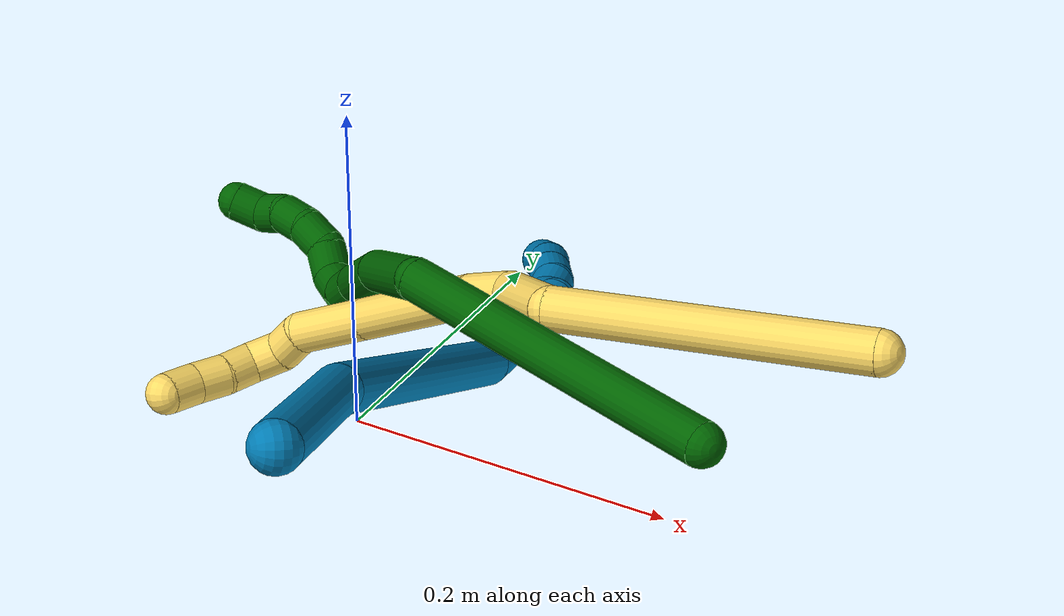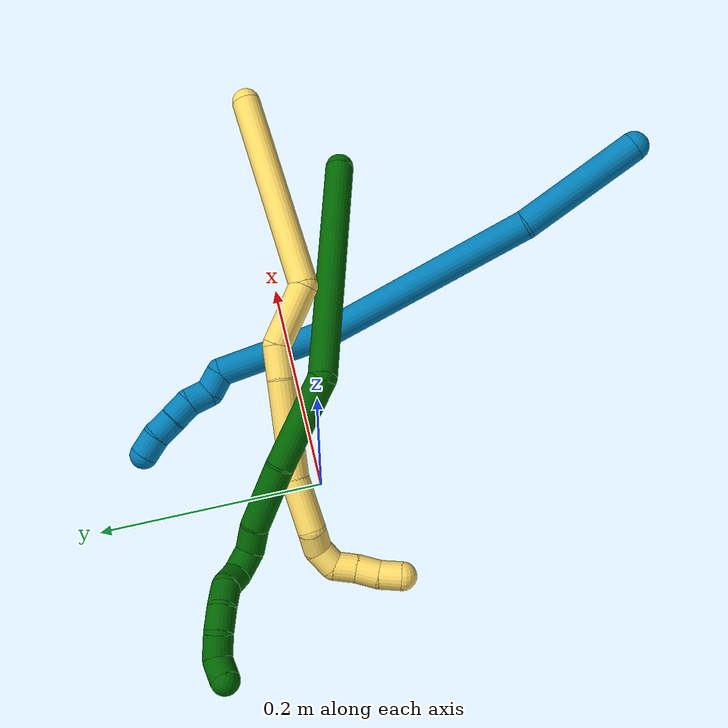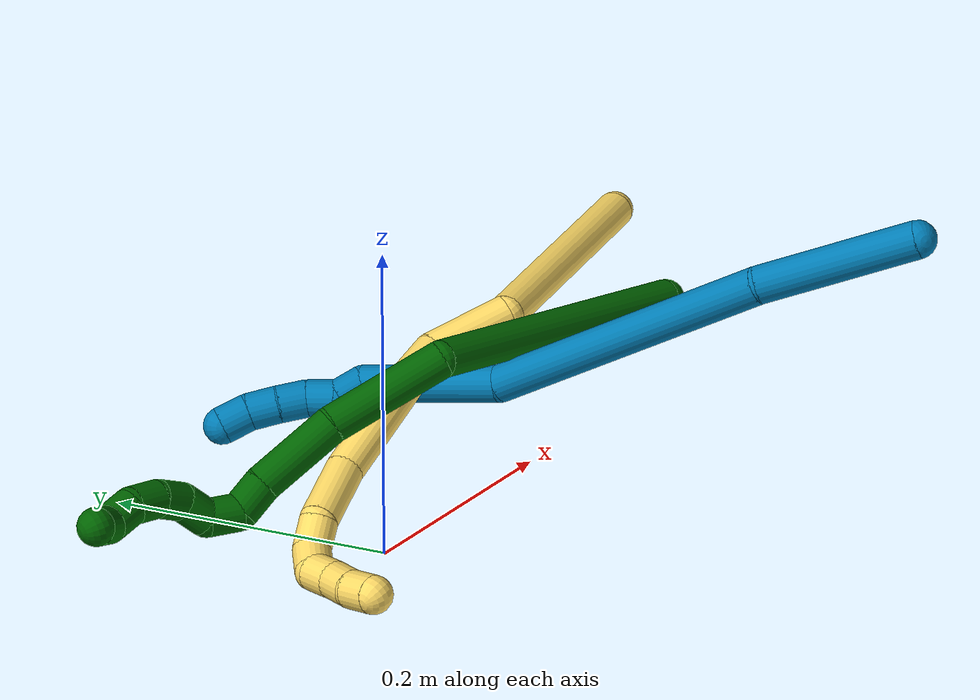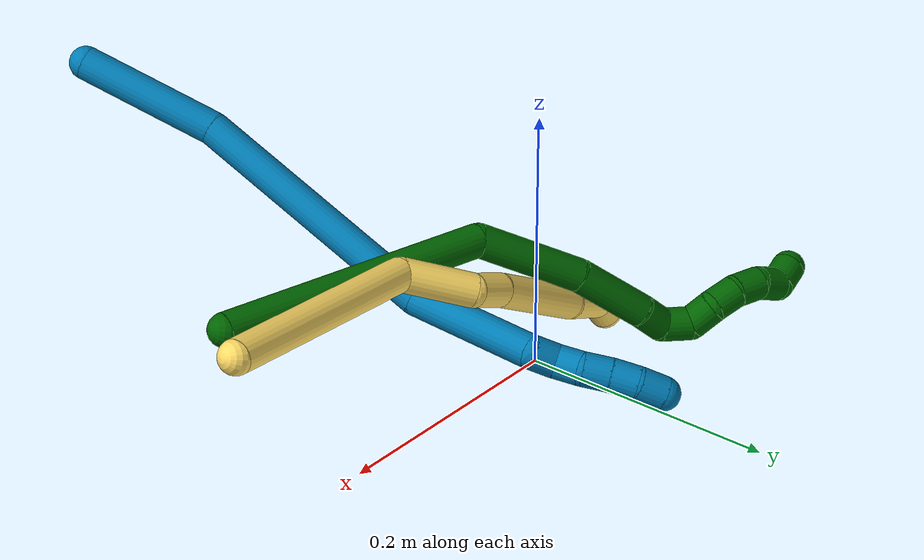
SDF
<sdf version="1.7">
 <world name="default">
  <model name="5">
   <static>0</static>
   <link name="5">
    <collision name="collision-cylinder-e_1_1_4">
     <pose>-0.026023 0.006888 -0.086914 -3.06251 -0.290059 2.61253</pose>
     <geometry><cylinder><radius>0.0125</radius><length>0.181974</length></cylinder></geometry>
     <surface>
      <friction><ode><mu>1.16</mu><mu2>1.16</mu2><slip1>0</slip1><slip2>0</slip2></ode></friction>
      <contact><ode><kp>1e+06</kp><kd>1</kd><max_vel>0</max_vel><min_depth>0.001</min_depth></ode></contact>
     </surface>
    </collision>
    <visual name="visual-cylinder-e_1_1_4">
     <pose>-0.026023 0.006888 -0.086914 -3.06251 -0.290059 2.61253</pose>
     <geometry><cylinder><radius>0.0125</radius><length>0.181974</length></cylinder></geometry>
     <material><ambient>1 0.858824 0.4 1</ambient></material>
    </visual>
    <collision name="collision-cylinder-e_2_4_5">
     <pose>-0.039506 0.016576 -0.198475 -3.02848 0.46808 -2.67526</pose>
     <geometry><cylinder><radius>0.0125</radius><length>0.055591</length></cylinder></geometry>
     <surface>
      <friction><ode><mu>1.16</mu><mu2>1.16</mu2><slip1>0</slip1><slip2>0</slip2></ode></friction>
      <contact><ode><kp>1e+06</kp><kd>1</kd><max_vel>0</max_vel><min_depth>0.001</min_depth></ode></contact>
     </surface>
    </collision>
    <visual name="visual-cylinder-e_2_4_5">
     <pose>-0.039506 0.016576 -0.198475 -3.02848 0.46808 -2.67526</pose>
     <geometry><cylinder><radius>0.0125</radius><length>0.055591</length></cylinder></geometry>
     <material><ambient>1 0.858824 0.4 1</ambient></material>
    </visual>
    <collision name="collision-cylinder-e_3_5_6">
     <pose>-0.027673 0.017953 -0.237587 3.04353 -0.048684 -0.921123</pose>
     <geometry><cylinder><radius>0.0125</radius><length>0.029103</length></cylinder></geometry>
     <surface>
      <friction><ode><mu>1.16</mu><mu2>1.16</mu2><slip1>0</slip1><slip2>0</slip2></ode></friction>
      <contact><ode><kp>1e+06</kp><kd>1</kd><max_vel>0</max_vel><min_depth>0.001</min_depth></ode></contact>
     </surface>
    </collision>
    <visual name="visual-cylinder-e_3_5_6">
     <pose>-0.027673 0.017953 -0.237587 3.04353 -0.048684 -0.921123</pose>
     <geometry><cylinder><radius>0.0125</radius><length>0.029103</length></cylinder></geometry>
     <material><ambient>1 0.858824 0.4 1</ambient></material>
    </visual>
    <collision name="collision-cylinder-e_4_6_7">
     <pose>-0.02821 0.007612 -0.293947 2.93187 0.003991 0.037914</pose>
     <geometry><cylinder><radius>0.0125</radius><length>0.085669</length></cylinder></geometry>
     <surface>
      <friction><ode><mu>1.16</mu><mu2>1.16</mu2><slip1>0</slip1><slip2>0</slip2></ode></friction>
      <contact><ode><kp>1e+06</kp><kd>1</kd><max_vel>0</max_vel><min_depth>0.001</min_depth></ode></contact>
     </surface>
    </collision>
    <visual name="visual-cylinder-e_4_6_7">
     <pose>-0.02821 0.007612 -0.293947 2.93187 0.003991 0.037914</pose>
     <geometry><cylinder><radius>0.0125</radius><length>0.085669</length></cylinder></geometry>
     <material><ambient>1 0.858824 0.4 1</ambient></material>
    </visual>
    <collision name="collision-cylinder-e_5_7_8">
     <pose>-0.032521 -0.006607 -0.358301 2.90977 -0.191824 -1.38111</pose>
     <geometry><cylinder><radius>0.0125</radius><length>0.047014</length></cylinder></geometry>
     <surface>
      <friction><ode><mu>1.16</mu><mu2>1.16</mu2><slip1>0</slip1><slip2>0</slip2></ode></friction>
      <contact><ode><kp>1e+06</kp><kd>1</kd><max_vel>0</max_vel><min_depth>0.001</min_depth></ode></contact>
     </surface>
    </collision>
    <visual name="visual-cylinder-e_5_7_8">
     <pose>-0.032521 -0.006607 -0.358301 2.90977 -0.191824 -1.38111</pose>
     <geometry><cylinder><radius>0.0125</radius><length>0.047014</length></cylinder></geometry>
     <material><ambient>1 0.858824 0.4 1</ambient></material>
    </visual>
    <collision name="collision-cylinder-e_6_8_9">
     <pose>-0.0368 -0.01787 -0.389017 2.51626 0.019905 0.061557</pose>
     <geometry><cylinder><radius>0.0125</radius><length>0.020372</length></cylinder></geometry>
     <surface>
      <friction><ode><mu>1.16</mu><mu2>1.16</mu2><slip1>0</slip1><slip2>0</slip2></ode></friction>
      <contact><ode><kp>1e+06</kp><kd>1</kd><max_vel>0</max_vel><min_depth>0.001</min_depth></ode></contact>
     </surface>
    </collision>
    <visual name="visual-cylinder-e_6_8_9">
     <pose>-0.0368 -0.01787 -0.389017 2.51626 0.019905 0.061557</pose>
     <geometry><cylinder><radius>0.0125</radius><length>0.020372</length></cylinder></geometry>
     <material><ambient>1 0.858824 0.4 1</ambient></material>
    </visual>
    <collision name="collision-cylinder-e_7_9_10">
     <pose>-0.042049 -0.02781 -0.404792 2.65495 -0.569968 -1.73568</pose>
     <geometry><cylinder><radius>0.0125</radius><length>0.020206</length></cylinder></geometry>
     <surface>
      <friction><ode><mu>1.16</mu><mu2>1.16</mu2><slip1>0</slip1><slip2>0</slip2></ode></friction>
      <contact><ode><kp>1e+06</kp><kd>1</kd><max_vel>0</max_vel><min_depth>0.001</min_depth></ode></contact>
     </surface>
    </collision>
    <visual name="visual-cylinder-e_7_9_10">
     <pose>-0.042049 -0.02781 -0.404792 2.65495 -0.569968 -1.73568</pose>
     <geometry><cylinder><radius>0.0125</radius><length>0.020206</length></cylinder></geometry>
     <material><ambient>1 0.858824 0.4 1</ambient></material>
    </visual>
    <collision name="collision-cylinder-e_8_10_11">
     <pose>-0.056751 -0.035185 -0.414016 2.03624 -1.18086 -1.65371</pose>
     <geometry><cylinder><radius>0.0125</radius><length>0.020003</length></cylinder></geometry>
     <surface>
      <friction><ode><mu>1.16</mu><mu2>1.16</mu2><slip1>0</slip1><slip2>0</slip2></ode></friction>
      <contact><ode><kp>1e+06</kp><kd>1</kd><max_vel>0</max_vel><min_depth>0.001</min_depth></ode></contact>
     </surface>
    </collision>
    <visual name="visual-cylinder-e_8_10_11">
     <pose>-0.056751 -0.035185 -0.414016 2.03624 -1.18086 -1.65371</pose>
     <geometry><cylinder><radius>0.0125</radius><length>0.020003</length></cylinder></geometry>
     <material><ambient>1 0.858824 0.4 1</ambient></material>
    </visual>
    <collision name="collision-cylinder-e_9_11_12">
     <pose>-0.07517 -0.041192 -0.418783 2.43543 -1.15741 -2.11442</pose>
     <geometry><cylinder><radius>0.0125</radius><length>0.020023</length></cylinder></geometry>
     <surface>
      <friction><ode><mu>1.16</mu><mu2>1.16</mu2><slip1>0</slip1><slip2>0</slip2></ode></friction>
      <contact><ode><kp>1e+06</kp><kd>1</kd><max_vel>0</max_vel><min_depth>0.001</min_depth></ode></contact>
     </surface>
    </collision>
    <visual name="visual-cylinder-e_9_11_12">
     <pose>-0.07517 -0.041192 -0.418783 2.43543 -1.15741 -2.11442</pose>
     <geometry><cylinder><radius>0.0125</radius><length>0.020023</length></cylinder></geometry>
     <material><ambient>1 0.858824 0.4 1</ambient></material>
    </visual>
    <collision name="collision-cylinder-e_10_12_2">
     <pose>-0.093944 -0.046433 -0.42296 1.97223 -1.28152 -1.68979</pose>
     <geometry><cylinder><radius>0.0125</radius><length>0.020044</length></cylinder></geometry>
     <surface>
      <friction><ode><mu>1.16</mu><mu2>1.16</mu2><slip1>0</slip1><slip2>0</slip2></ode></friction>
      <contact><ode><kp>1e+06</kp><kd>1</kd><max_vel>0</max_vel><min_depth>0.001</min_depth></ode></contact>
     </surface>
    </collision>
    <visual name="visual-cylinder-e_10_12_2">
     <pose>-0.093944 -0.046433 -0.42296 1.97223 -1.28152 -1.68979</pose>
     <geometry><cylinder><radius>0.0125</radius><length>0.020044</length></cylinder></geometry>
     <material><ambient>1 0.858824 0.4 1</ambient></material>
    </visual>
    <collision name="collision-sphere-2">
     <pose>-0.103549 -0.049065 -0.424077 0 -0 0</pose>
     <geometry><sphere><radius>0.0125</radius></sphere></geometry>
     <surface>
      <friction><ode><mu>1.16</mu><mu2>1.16</mu2><slip1>0</slip1><slip2>0</slip2></ode></friction>
      <contact><ode><kp>1e+06</kp><kd>1</kd><max_vel>0</max_vel><min_depth>0.001</min_depth></ode></contact>
     </surface>
    </collision>
    <visual name="visual-sphere-2">
     <pose>-0.103549 -0.049065 -0.424077 0 -0 0</pose>
     <geometry><sphere><radius>0.0125</radius></sphere></geometry>
     <material><ambient>1 0.858824 0.4 1</ambient></material>
    </visual>
    <collision name="collision-sphere-12">
     <pose>-0.084338 -0.043802 -0.421843 0 -0 0</pose>
     <geometry><sphere><radius>0.0125</radius></sphere></geometry>
     <surface>
      <friction><ode><mu>1.16</mu><mu2>1.16</mu2><slip1>0</slip1><slip2>0</slip2></ode></friction>
      <contact><ode><kp>1e+06</kp><kd>1</kd><max_vel>0</max_vel><min_depth>0.001</min_depth></ode></contact>
     </surface>
    </collision>
    <visual name="visual-sphere-12">
     <pose>-0.084338 -0.043802 -0.421843 0 -0 0</pose>
     <geometry><sphere><radius>0.0125</radius></sphere></geometry>
     <material><ambient>1 0.858824 0.4 1</ambient></material>
    </visual>
    <collision name="collision-sphere-11">
     <pose>-0.066001 -0.038582 -0.415723 0 -0 0</pose>
     <geometry><sphere><radius>0.0125</radius></sphere></geometry>
     <surface>
      <friction><ode><mu>1.16</mu><mu2>1.16</mu2><slip1>0</slip1><slip2>0</slip2></ode></friction>
      <contact><ode><kp>1e+06</kp><kd>1</kd><max_vel>0</max_vel><min_depth>0.001</min_depth></ode></contact>
     </surface>
    </collision>
    <visual name="visual-sphere-11">
     <pose>-0.066001 -0.038582 -0.415723 0 -0 0</pose>
     <geometry><sphere><radius>0.0125</radius></sphere></geometry>
     <material><ambient>1 0.858824 0.4 1</ambient></material>
    </visual>
    <collision name="collision-sphere-10">
     <pose>-0.0475 -0.031787 -0.41231 0 -0 0</pose>
     <geometry><sphere><radius>0.0125</radius></sphere></geometry>
     <surface>
      <friction><ode><mu>1.16</mu><mu2>1.16</mu2><slip1>0</slip1><slip2>0</slip2></ode></friction>
      <contact><ode><kp>1e+06</kp><kd>1</kd><max_vel>0</max_vel><min_depth>0.001</min_depth></ode></contact>
     </surface>
    </collision>
    <visual name="visual-sphere-10">
     <pose>-0.0475 -0.031787 -0.41231 0 -0 0</pose>
     <geometry><sphere><radius>0.0125</radius></sphere></geometry>
     <material><ambient>1 0.858824 0.4 1</ambient></material>
    </visual>
    <collision name="collision-sphere-9">
     <pose>-0.036597 -0.023832 -0.397274 0 -0 0</pose>
     <geometry><sphere><radius>0.0125</radius></sphere></geometry>
     <surface>
      <friction><ode><mu>1.16</mu><mu2>1.16</mu2><slip1>0</slip1><slip2>0</slip2></ode></friction>
      <contact><ode><kp>1e+06</kp><kd>1</kd><max_vel>0</max_vel><min_depth>0.001</min_depth></ode></contact>
     </surface>
    </collision>
    <visual name="visual-sphere-9">
     <pose>-0.036597 -0.023832 -0.397274 0 -0 0</pose>
     <geometry><sphere><radius>0.0125</radius></sphere></geometry>
     <material><ambient>1 0.858824 0.4 1</ambient></material>
    </visual>
    <collision name="collision-sphere-4">
     <pose>-0.052046 0.013776 -0.173828 0 -0 0</pose>
     <geometry><sphere><radius>0.0125</radius></sphere></geometry>
     <surface>
      <friction><ode><mu>1.16</mu><mu2>1.16</mu2><slip1>0</slip1><slip2>0</slip2></ode></friction>
      <contact><ode><kp>1e+06</kp><kd>1</kd><max_vel>0</max_vel><min_depth>0.001</min_depth></ode></contact>
     </surface>
    </collision>
    <visual name="visual-sphere-4">
     <pose>-0.052046 0.013776 -0.173828 0 -0 0</pose>
     <geometry><sphere><radius>0.0125</radius></sphere></geometry>
     <material><ambient>1 0.858824 0.4 1</ambient></material>
    </visual>
    <collision name="collision-sphere-1">
     <geometry><sphere><radius>0.0125</radius></sphere></geometry>
     <surface>
      <friction><ode><mu>1.16</mu><mu2>1.16</mu2><slip1>0</slip1><slip2>0</slip2></ode></friction>
      <contact><ode><kp>1e+06</kp><kd>1</kd><max_vel>0</max_vel><min_depth>0.001</min_depth></ode></contact>
     </surface>
    </collision>
    <visual name="visual-sphere-1">
     <geometry><sphere><radius>0.0125</radius></sphere></geometry>
     <material><ambient>1 0.858824 0.4 1</ambient></material>
    </visual>
    <collision name="collision-sphere-8">
     <pose>-0.037003 -0.011909 -0.38076 0 -0 0</pose>
     <geometry><sphere><radius>0.0125</radius></sphere></geometry>
     <surface>
      <friction><ode><mu>1.16</mu><mu2>1.16</mu2><slip1>0</slip1><slip2>0</slip2></ode></friction>
      <contact><ode><kp>1e+06</kp><kd>1</kd><max_vel>0</max_vel><min_depth>0.001</min_depth></ode></contact>
     </surface>
    </collision>
    <visual name="visual-sphere-8">
     <pose>-0.037003 -0.011909 -0.38076 0 -0 0</pose>
     <geometry><sphere><radius>0.0125</radius></sphere></geometry>
     <material><ambient>1 0.858824 0.4 1</ambient></material>
    </visual>
    <collision name="collision-sphere-5">
     <pose>-0.026965 0.019376 -0.223123 0 -0 0</pose>
     <geometry><sphere><radius>0.0125</radius></sphere></geometry>
     <surface>
      <friction><ode><mu>1.16</mu><mu2>1.16</mu2><slip1>0</slip1><slip2>0</slip2></ode></friction>
      <contact><ode><kp>1e+06</kp><kd>1</kd><max_vel>0</max_vel><min_depth>0.001</min_depth></ode></contact>
     </surface>
    </collision>
    <visual name="visual-sphere-5">
     <pose>-0.026965 0.019376 -0.223123 0 -0 0</pose>
     <geometry><sphere><radius>0.0125</radius></sphere></geometry>
     <material><ambient>1 0.858824 0.4 1</ambient></material>
    </visual>
    <collision name="collision-sphere-6">
     <pose>-0.028381 0.01653 -0.252052 0 -0 0</pose>
     <geometry><sphere><radius>0.0125</radius></sphere></geometry>
     <surface>
      <friction><ode><mu>1.16</mu><mu2>1.16</mu2><slip1>0</slip1><slip2>0</slip2></ode></friction>
      <contact><ode><kp>1e+06</kp><kd>1</kd><max_vel>0</max_vel><min_depth>0.001</min_depth></ode></contact>
     </surface>
    </collision>
    <visual name="visual-sphere-6">
     <pose>-0.028381 0.01653 -0.252052 0 -0 0</pose>
     <geometry><sphere><radius>0.0125</radius></sphere></geometry>
     <material><ambient>1 0.858824 0.4 1</ambient></material>
    </visual>
    <collision name="collision-sphere-7">
     <pose>-0.028039 -0.001305 -0.335843 0 -0 0</pose>
     <geometry><sphere><radius>0.0125</radius></sphere></geometry>
     <surface>
      <friction><ode><mu>1.16</mu><mu2>1.16</mu2><slip1>0</slip1><slip2>0</slip2></ode></friction>
      <contact><ode><kp>1e+06</kp><kd>1</kd><max_vel>0</max_vel><min_depth>0.001</min_depth></ode></contact>
     </surface>
    </collision>
    <visual name="visual-sphere-7">
     <pose>-0.028039 -0.001305 -0.335843 0 -0 0</pose>
     <geometry><sphere><radius>0.0125</radius></sphere></geometry>
     <material><ambient>1 0.858824 0.4 1</ambient></material>
    </visual>
    <inertial>
     <pose>-0.035611 -0.000693 -0.234081 0 -0 0</pose>
     <mass>0.5</mass>
     <inertia>
      <ixx>-0.000155</ixx>
      <ixy>0</ixy>
      <ixz>0</ixz>
      <iyy>0.000627</iyy>
      <iyz>0</iyz>
      <izz>8.9e-05</izz>
     </inertia>
    </inertial>
   </link>
   <pose>0.315366 -0.003879 0.146084 1.24429 0.377422 1.27833</pose>
  </model>
  <model name="6">
   <static>0</static>
   <link name="6">
    <collision name="collision-cylinder-e_1_1_4">
     <pose>-0.021596 0.025626 -0.099275 -2.88898 -0.207593 1.37406</pose>
     <geometry><cylinder><radius>0.0125</radius><length>0.209558</length></cylinder></geometry>
     <surface>
      <friction><ode><mu>1.16</mu><mu2>1.16</mu2><slip1>0</slip1><slip2>0</slip2></ode></friction>
      <contact><ode><kp>1e+06</kp><kd>1</kd><max_vel>0</max_vel><min_depth>0.001</min_depth></ode></contact>
     </surface>
    </collision>
    <visual name="visual-cylinder-e_1_1_4">
     <pose>-0.021596 0.025626 -0.099275 -2.88898 -0.207593 1.37406</pose>
     <geometry><cylinder><radius>0.0125</radius><length>0.209558</length></cylinder></geometry>
     <material><ambient>0 0.392157 0.003922 1</ambient></material>
    </visual>
    <collision name="collision-cylinder-e_2_4_5">
     <pose>-0.035823 0.041123 -0.237878 2.88951 0.179486 1.23503</pose>
     <geometry><cylinder><radius>0.0125</radius><length>0.082547</length></cylinder></geometry>
     <surface>
      <friction><ode><mu>1.16</mu><mu2>1.16</mu2><slip1>0</slip1><slip2>0</slip2></ode></friction>
      <contact><ode><kp>1e+06</kp><kd>1</kd><max_vel>0</max_vel><min_depth>0.001</min_depth></ode></contact>
     </surface>
    </collision>
    <visual name="visual-cylinder-e_2_4_5">
     <pose>-0.035823 0.041123 -0.237878 2.88951 0.179486 1.23503</pose>
     <geometry><cylinder><radius>0.0125</radius><length>0.082547</length></cylinder></geometry>
     <material><ambient>0 0.392157 0.003922 1</ambient></material>
    </visual>
    <collision name="collision-cylinder-e_3_5_6">
     <pose>-0.024387 0.018856 -0.303339 2.70681 0.140225 0.615664</pose>
     <geometry><cylinder><radius>0.0125</radius><length>0.058203</length></cylinder></geometry>
     <surface>
      <friction><ode><mu>1.16</mu><mu2>1.16</mu2><slip1>0</slip1><slip2>0</slip2></ode></friction>
      <contact><ode><kp>1e+06</kp><kd>1</kd><max_vel>0</max_vel><min_depth>0.001</min_depth></ode></contact>
     </surface>
    </collision>
    <visual name="visual-cylinder-e_3_5_6">
     <pose>-0.024387 0.018856 -0.303339 2.70681 0.140225 0.615664</pose>
     <geometry><cylinder><radius>0.0125</radius><length>0.058203</length></cylinder></geometry>
     <material><ambient>0 0.392157 0.003922 1</ambient></material>
    </visual>
    <collision name="collision-cylinder-e_4_6_7">
     <pose>-0.020765 0.00095 -0.339543 2.62133 -0.038393 -0.144014</pose>
     <geometry><cylinder><radius>0.0125</radius><length>0.023226</length></cylinder></geometry>
     <surface>
      <friction><ode><mu>1.16</mu><mu2>1.16</mu2><slip1>0</slip1><slip2>0</slip2></ode></friction>
      <contact><ode><kp>1e+06</kp><kd>1</kd><max_vel>0</max_vel><min_depth>0.001</min_depth></ode></contact>
     </surface>
    </collision>
    <visual name="visual-cylinder-e_4_6_7">
     <pose>-0.020765 0.00095 -0.339543 2.62133 -0.038393 -0.144014</pose>
     <geometry><cylinder><radius>0.0125</radius><length>0.023226</length></cylinder></geometry>
     <material><ambient>0 0.392157 0.003922 1</ambient></material>
    </visual>
    <collision name="collision-cylinder-e_5_7_8">
     <pose>-0.019047 -0.003203 -0.360509 -2.99442 0.193999 -1.84491</pose>
     <geometry><cylinder><radius>0.0125</radius><length>0.022454</length></cylinder></geometry>
     <surface>
      <friction><ode><mu>1.16</mu><mu2>1.16</mu2><slip1>0</slip1><slip2>0</slip2></ode></friction>
      <contact><ode><kp>1e+06</kp><kd>1</kd><max_vel>0</max_vel><min_depth>0.001</min_depth></ode></contact>
     </surface>
    </collision>
    <visual name="visual-cylinder-e_5_7_8">
     <pose>-0.019047 -0.003203 -0.360509 -2.99442 0.193999 -1.84491</pose>
     <geometry><cylinder><radius>0.0125</radius><length>0.022454</length></cylinder></geometry>
     <material><ambient>0 0.392157 0.003922 1</ambient></material>
    </visual>
    <collision name="collision-cylinder-e_6_8_9">
     <pose>-0.014681 0.006368 -0.377685 -2.23896 0.213933 -0.436038</pose>
     <geometry><cylinder><radius>0.0125</radius><length>0.020743</length></cylinder></geometry>
     <surface>
      <friction><ode><mu>1.16</mu><mu2>1.16</mu2><slip1>0</slip1><slip2>0</slip2></ode></friction>
      <contact><ode><kp>1e+06</kp><kd>1</kd><max_vel>0</max_vel><min_depth>0.001</min_depth></ode></contact>
     </surface>
    </collision>
    <visual name="visual-cylinder-e_6_8_9">
     <pose>-0.014681 0.006368 -0.377685 -2.23896 0.213933 -0.436038</pose>
     <geometry><cylinder><radius>0.0125</radius><length>0.020743</length></cylinder></geometry>
     <material><ambient>0 0.392157 0.003922 1</ambient></material>
    </visual>
    <collision name="collision-cylinder-e_7_9_10">
     <pose>-0.013936 0.019713 -0.392677 -2.58759 -0.141283 0.487848</pose>
     <geometry><cylinder><radius>0.0125</radius><length>0.020696</length></cylinder></geometry>
     <surface>
      <friction><ode><mu>1.16</mu><mu2>1.16</mu2><slip1>0</slip1><slip2>0</slip2></ode></friction>
      <contact><ode><kp>1e+06</kp><kd>1</kd><max_vel>0</max_vel><min_depth>0.001</min_depth></ode></contact>
     </surface>
    </collision>
    <visual name="visual-cylinder-e_7_9_10">
     <pose>-0.013936 0.019713 -0.392677 -2.58759 -0.141283 0.487848</pose>
     <geometry><cylinder><radius>0.0125</radius><length>0.020696</length></cylinder></geometry>
     <material><ambient>0 0.392157 0.003922 1</ambient></material>
    </visual>
    <collision name="collision-cylinder-e_8_10_11">
     <pose>-0.017378 0.027707 -0.411684 -2.89381 -0.18476 1.27924</pose>
     <geometry><cylinder><radius>0.0125</radius><length>0.021605</length></cylinder></geometry>
     <surface>
      <friction><ode><mu>1.16</mu><mu2>1.16</mu2><slip1>0</slip1><slip2>0</slip2></ode></friction>
      <contact><ode><kp>1e+06</kp><kd>1</kd><max_vel>0</max_vel><min_depth>0.001</min_depth></ode></contact>
     </surface>
    </collision>
    <visual name="visual-cylinder-e_8_10_11">
     <pose>-0.017378 0.027707 -0.411684 -2.89381 -0.18476 1.27924</pose>
     <geometry><cylinder><radius>0.0125</radius><length>0.021605</length></cylinder></geometry>
     <material><ambient>0 0.392157 0.003922 1</ambient></material>
    </visual>
    <collision name="collision-cylinder-e_9_11_12">
     <pose>-0.021826 0.028861 -0.432002 2.99788 -0.238632 -2.06015</pose>
     <geometry><cylinder><radius>0.0125</radius><length>0.020848</length></cylinder></geometry>
     <surface>
      <friction><ode><mu>1.16</mu><mu2>1.16</mu2><slip1>0</slip1><slip2>0</slip2></ode></friction>
      <contact><ode><kp>1e+06</kp><kd>1</kd><max_vel>0</max_vel><min_depth>0.001</min_depth></ode></contact>
     </surface>
    </collision>
    <visual name="visual-cylinder-e_9_11_12">
     <pose>-0.021826 0.028861 -0.432002 2.99788 -0.238632 -2.06015</pose>
     <geometry><cylinder><radius>0.0125</radius><length>0.020848</length></cylinder></geometry>
     <material><ambient>0 0.392157 0.003922 1</ambient></material>
    </visual>
    <collision name="collision-cylinder-e_10_12_2">
     <pose>-0.030155 0.031852 -0.448889 -2.56722 -0.62237 1.65595</pose>
     <geometry><cylinder><radius>0.0125</radius><length>0.020121</length></cylinder></geometry>
     <surface>
      <friction><ode><mu>1.16</mu><mu2>1.16</mu2><slip1>0</slip1><slip2>0</slip2></ode></friction>
      <contact><ode><kp>1e+06</kp><kd>1</kd><max_vel>0</max_vel><min_depth>0.001</min_depth></ode></contact>
     </surface>
    </collision>
    <visual name="visual-cylinder-e_10_12_2">
     <pose>-0.030155 0.031852 -0.448889 -2.56722 -0.62237 1.65595</pose>
     <geometry><cylinder><radius>0.0125</radius><length>0.020121</length></cylinder></geometry>
     <material><ambient>0 0.392157 0.003922 1</ambient></material>
    </visual>
    <collision name="collision-sphere-2">
     <pose>-0.03602 0.036293 -0.455751 0 -0 0</pose>
     <geometry><sphere><radius>0.0125</radius></sphere></geometry>
     <surface>
      <friction><ode><mu>1.16</mu><mu2>1.16</mu2><slip1>0</slip1><slip2>0</slip2></ode></friction>
      <contact><ode><kp>1e+06</kp><kd>1</kd><max_vel>0</max_vel><min_depth>0.001</min_depth></ode></contact>
     </surface>
    </collision>
    <visual name="visual-sphere-2">
     <pose>-0.03602 0.036293 -0.455751 0 -0 0</pose>
     <geometry><sphere><radius>0.0125</radius></sphere></geometry>
     <material><ambient>0 0.392157 0.003922 1</ambient></material>
    </visual>
    <collision name="collision-sphere-12">
     <pose>-0.02429 0.027411 -0.442026 0 -0 0</pose>
     <geometry><sphere><radius>0.0125</radius></sphere></geometry>
     <surface>
      <friction><ode><mu>1.16</mu><mu2>1.16</mu2><slip1>0</slip1><slip2>0</slip2></ode></friction>
      <contact><ode><kp>1e+06</kp><kd>1</kd><max_vel>0</max_vel><min_depth>0.001</min_depth></ode></contact>
     </surface>
    </collision>
    <visual name="visual-sphere-12">
     <pose>-0.02429 0.027411 -0.442026 0 -0 0</pose>
     <geometry><sphere><radius>0.0125</radius></sphere></geometry>
     <material><ambient>0 0.392157 0.003922 1</ambient></material>
    </visual>
    <collision name="collision-sphere-11">
     <pose>-0.019362 0.030312 -0.421978 0 -0 0</pose>
     <geometry><sphere><radius>0.0125</radius></sphere></geometry>
     <surface>
      <friction><ode><mu>1.16</mu><mu2>1.16</mu2><slip1>0</slip1><slip2>0</slip2></ode></friction>
      <contact><ode><kp>1e+06</kp><kd>1</kd><max_vel>0</max_vel><min_depth>0.001</min_depth></ode></contact>
     </surface>
    </collision>
    <visual name="visual-sphere-11">
     <pose>-0.019362 0.030312 -0.421978 0 -0 0</pose>
     <geometry><sphere><radius>0.0125</radius></sphere></geometry>
     <material><ambient>0 0.392157 0.003922 1</ambient></material>
    </visual>
    <collision name="collision-sphere-10">
     <pose>-0.015393 0.025103 -0.401389 0 -0 0</pose>
     <geometry><sphere><radius>0.0125</radius></sphere></geometry>
     <surface>
      <friction><ode><mu>1.16</mu><mu2>1.16</mu2><slip1>0</slip1><slip2>0</slip2></ode></friction>
      <contact><ode><kp>1e+06</kp><kd>1</kd><max_vel>0</max_vel><min_depth>0.001</min_depth></ode></contact>
     </surface>
    </collision>
    <visual name="visual-sphere-10">
     <pose>-0.015393 0.025103 -0.401389 0 -0 0</pose>
     <geometry><sphere><radius>0.0125</radius></sphere></geometry>
     <material><ambient>0 0.392157 0.003922 1</ambient></material>
    </visual>
    <collision name="collision-sphere-9">
     <pose>-0.012479 0.014323 -0.383964 0 -0 0</pose>
     <geometry><sphere><radius>0.0125</radius></sphere></geometry>
     <surface>
      <friction><ode><mu>1.16</mu><mu2>1.16</mu2><slip1>0</slip1><slip2>0</slip2></ode></friction>
      <contact><ode><kp>1e+06</kp><kd>1</kd><max_vel>0</max_vel><min_depth>0.001</min_depth></ode></contact>
     </surface>
    </collision>
    <visual name="visual-sphere-9">
     <pose>-0.012479 0.014323 -0.383964 0 -0 0</pose>
     <geometry><sphere><radius>0.0125</radius></sphere></geometry>
     <material><ambient>0 0.392157 0.003922 1</ambient></material>
    </visual>
    <collision name="collision-sphere-4">
     <pose>-0.043191 0.051252 -0.198551 0 -0 0</pose>
     <geometry><sphere><radius>0.0125</radius></sphere></geometry>
     <surface>
      <friction><ode><mu>1.16</mu><mu2>1.16</mu2><slip1>0</slip1><slip2>0</slip2></ode></friction>
      <contact><ode><kp>1e+06</kp><kd>1</kd><max_vel>0</max_vel><min_depth>0.001</min_depth></ode></contact>
     </surface>
    </collision>
    <visual name="visual-sphere-4">
     <pose>-0.043191 0.051252 -0.198551 0 -0 0</pose>
     <geometry><sphere><radius>0.0125</radius></sphere></geometry>
     <material><ambient>0 0.392157 0.003922 1</ambient></material>
    </visual>
    <collision name="collision-sphere-1">
     <geometry><sphere><radius>0.0125</radius></sphere></geometry>
     <surface>
      <friction><ode><mu>1.16</mu><mu2>1.16</mu2><slip1>0</slip1><slip2>0</slip2></ode></friction>
      <contact><ode><kp>1e+06</kp><kd>1</kd><max_vel>0</max_vel><min_depth>0.001</min_depth></ode></contact>
     </surface>
    </collision>
    <visual name="visual-sphere-1">
     <geometry><sphere><radius>0.0125</radius></sphere></geometry>
     <material><ambient>0 0.392157 0.003922 1</ambient></material>
    </visual>
    <collision name="collision-sphere-8">
     <pose>-0.016883 -0.001588 -0.371406 0 -0 0</pose>
     <geometry><sphere><radius>0.0125</radius></sphere></geometry>
     <surface>
      <friction><ode><mu>1.16</mu><mu2>1.16</mu2><slip1>0</slip1><slip2>0</slip2></ode></friction>
      <contact><ode><kp>1e+06</kp><kd>1</kd><max_vel>0</max_vel><min_depth>0.001</min_depth></ode></contact>
     </surface>
    </collision>
    <visual name="visual-sphere-8">
     <pose>-0.016883 -0.001588 -0.371406 0 -0 0</pose>
     <geometry><sphere><radius>0.0125</radius></sphere></geometry>
     <material><ambient>0 0.392157 0.003922 1</ambient></material>
    </visual>
    <collision name="collision-sphere-5">
     <pose>-0.028455 0.030994 -0.277205 0 -0 0</pose>
     <geometry><sphere><radius>0.0125</radius></sphere></geometry>
     <surface>
      <friction><ode><mu>1.16</mu><mu2>1.16</mu2><slip1>0</slip1><slip2>0</slip2></ode></friction>
      <contact><ode><kp>1e+06</kp><kd>1</kd><max_vel>0</max_vel><min_depth>0.001</min_depth></ode></contact>
     </surface>
    </collision>
    <visual name="visual-sphere-5">
     <pose>-0.028455 0.030994 -0.277205 0 -0 0</pose>
     <geometry><sphere><radius>0.0125</radius></sphere></geometry>
     <material><ambient>0 0.392157 0.003922 1</ambient></material>
    </visual>
    <collision name="collision-sphere-6">
     <pose>-0.02032 0.006719 -0.329474 0 -0 0</pose>
     <geometry><sphere><radius>0.0125</radius></sphere></geometry>
     <surface>
      <friction><ode><mu>1.16</mu><mu2>1.16</mu2><slip1>0</slip1><slip2>0</slip2></ode></friction>
      <contact><ode><kp>1e+06</kp><kd>1</kd><max_vel>0</max_vel><min_depth>0.001</min_depth></ode></contact>
     </surface>
    </collision>
    <visual name="visual-sphere-6">
     <pose>-0.02032 0.006719 -0.329474 0 -0 0</pose>
     <geometry><sphere><radius>0.0125</radius></sphere></geometry>
     <material><ambient>0 0.392157 0.003922 1</ambient></material>
    </visual>
    <collision name="collision-sphere-7">
     <pose>-0.021211 -0.004819 -0.349612 0 -0 0</pose>
     <geometry><sphere><radius>0.0125</radius></sphere></geometry>
     <surface>
      <friction><ode><mu>1.16</mu><mu2>1.16</mu2><slip1>0</slip1><slip2>0</slip2></ode></friction>
      <contact><ode><kp>1e+06</kp><kd>1</kd><max_vel>0</max_vel><min_depth>0.001</min_depth></ode></contact>
     </surface>
    </collision>
    <visual name="visual-sphere-7">
     <pose>-0.021211 -0.004819 -0.349612 0 -0 0</pose>
     <geometry><sphere><radius>0.0125</radius></sphere></geometry>
     <material><ambient>0 0.392157 0.003922 1</ambient></material>
    </visual>
    <inertial>
     <pose>-0.023684 0.024387 -0.23394 0 -0 0</pose>
     <mass>0.5</mass>
     <inertia>
      <ixx>0.000981</ixx>
      <ixy>0</ixy>
      <ixz>0</ixz>
      <iyy>0.000667</iyy>
      <iyz>0</iyz>
      <izz>-5.8e-05</izz>
     </inertia>
    </inertial>
   </link>
   <pose>0.251742 -0.074517 0.111912 1.36065 -0.051174 1.06954</pose>
  </model>
  <model name="9">
   <static>0</static>
   <link name="9">
    <collision name="collision-cylinder-e_1_1_4">
     <pose>-0.007682 0.044252 -0.028825 -2.14814 -0.144439 0.26536</pose>
     <geometry><cylinder><radius>0.0125</radius><length>0.106736</length></cylinder></geometry>
     <surface>
      <friction><ode><mu>1.16</mu><mu2>1.16</mu2><slip1>0</slip1><slip2>0</slip2></ode></friction>
      <contact><ode><kp>1e+06</kp><kd>1</kd><max_vel>0</max_vel><min_depth>0.001</min_depth></ode></contact>
     </surface>
    </collision>
    <visual name="visual-cylinder-e_1_1_4">
     <pose>-0.007682 0.044252 -0.028825 -2.14814 -0.144439 0.26536</pose>
     <geometry><cylinder><radius>0.0125</radius><length>0.106736</length></cylinder></geometry>
     <material><ambient>0 0.490196 0.709804 1</ambient></material>
    </visual>
    <collision name="collision-cylinder-e_2_4_5">
     <pose>-0.040394 0.156162 -0.124311 -2.34877 -0.257673 0.600332</pose>
     <geometry><cylinder><radius>0.0125</radius><length>0.196447</length></cylinder></geometry>
     <surface>
      <friction><ode><mu>1.16</mu><mu2>1.16</mu2><slip1>0</slip1><slip2>0</slip2></ode></friction>
      <contact><ode><kp>1e+06</kp><kd>1</kd><max_vel>0</max_vel><min_depth>0.001</min_depth></ode></contact>
     </surface>
    </collision>
    <visual name="visual-cylinder-e_2_4_5">
     <pose>-0.040394 0.156162 -0.124311 -2.34877 -0.257673 0.600332</pose>
     <geometry><cylinder><radius>0.0125</radius><length>0.196447</length></cylinder></geometry>
     <material><ambient>0 0.490196 0.709804 1</ambient></material>
    </visual>
    <collision name="collision-cylinder-e_3_5_6">
     <pose>-0.061618 0.258024 -0.224988 -2.35344 0.078741 -0.188895</pose>
     <geometry><cylinder><radius>0.0125</radius><length>0.096777</length></cylinder></geometry>
     <surface>
      <friction><ode><mu>1.16</mu><mu2>1.16</mu2><slip1>0</slip1><slip2>0</slip2></ode></friction>
      <contact><ode><kp>1e+06</kp><kd>1</kd><max_vel>0</max_vel><min_depth>0.001</min_depth></ode></contact>
     </surface>
    </collision>
    <visual name="visual-cylinder-e_3_5_6">
     <pose>-0.061618 0.258024 -0.224988 -2.35344 0.078741 -0.188895</pose>
     <geometry><cylinder><radius>0.0125</radius><length>0.096777</length></cylinder></geometry>
     <material><ambient>0 0.490196 0.709804 1</ambient></material>
    </visual>
    <collision name="collision-cylinder-e_4_6_7">
     <pose>-0.060829 0.301651 -0.260464 -1.72454 -0.306489 0.356641</pose>
     <geometry><cylinder><radius>0.0125</radius><length>0.020003</length></cylinder></geometry>
     <surface>
      <friction><ode><mu>1.16</mu><mu2>1.16</mu2><slip1>0</slip1><slip2>0</slip2></ode></friction>
      <contact><ode><kp>1e+06</kp><kd>1</kd><max_vel>0</max_vel><min_depth>0.001</min_depth></ode></contact>
     </surface>
    </collision>
    <visual name="visual-cylinder-e_4_6_7">
     <pose>-0.060829 0.301651 -0.260464 -1.72454 -0.306489 0.356641</pose>
     <geometry><cylinder><radius>0.0125</radius><length>0.020003</length></cylinder></geometry>
     <material><ambient>0 0.490196 0.709804 1</ambient></material>
    </visual>
    <collision name="collision-cylinder-e_5_7_8">
     <pose>-0.062492 0.319086 -0.267761 -2.20043 0.135795 -0.265781</pose>
     <geometry><cylinder><radius>0.0125</radius><length>0.020011</length></cylinder></geometry>
     <surface>
      <friction><ode><mu>1.16</mu><mu2>1.16</mu2><slip1>0</slip1><slip2>0</slip2></ode></friction>
      <contact><ode><kp>1e+06</kp><kd>1</kd><max_vel>0</max_vel><min_depth>0.001</min_depth></ode></contact>
     </surface>
    </collision>
    <visual name="visual-cylinder-e_5_7_8">
     <pose>-0.062492 0.319086 -0.267761 -2.20043 0.135795 -0.265781</pose>
     <geometry><cylinder><radius>0.0125</radius><length>0.020011</length></cylinder></geometry>
     <material><ambient>0 0.490196 0.709804 1</ambient></material>
    </visual>
    <collision name="collision-cylinder-e_6_8_9">
     <pose>-0.061299 0.336625 -0.27665 -1.88079 -0.016134 0.022109</pose>
     <geometry><cylinder><radius>0.0125</radius><length>0.020009</length></cylinder></geometry>
     <surface>
      <friction><ode><mu>1.16</mu><mu2>1.16</mu2><slip1>0</slip1><slip2>0</slip2></ode></friction>
      <contact><ode><kp>1e+06</kp><kd>1</kd><max_vel>0</max_vel><min_depth>0.001</min_depth></ode></contact>
     </surface>
    </collision>
    <visual name="visual-cylinder-e_6_8_9">
     <pose>-0.061299 0.336625 -0.27665 -1.88079 -0.016134 0.022109</pose>
     <geometry><cylinder><radius>0.0125</radius><length>0.020009</length></cylinder></geometry>
     <material><ambient>0 0.490196 0.709804 1</ambient></material>
    </visual>
    <collision name="collision-cylinder-e_7_9_10">
     <pose>-0.062207 0.355443 -0.283341 -1.94405 -0.074643 0.109335</pose>
     <geometry><cylinder><radius>0.0125</radius><length>0.020014</length></cylinder></geometry>
     <surface>
      <friction><ode><mu>1.16</mu><mu2>1.16</mu2><slip1>0</slip1><slip2>0</slip2></ode></friction>
      <contact><ode><kp>1e+06</kp><kd>1</kd><max_vel>0</max_vel><min_depth>0.001</min_depth></ode></contact>
     </surface>
    </collision>
    <visual name="visual-cylinder-e_7_9_10">
     <pose>-0.062207 0.355443 -0.283341 -1.94405 -0.074643 0.109335</pose>
     <geometry><cylinder><radius>0.0125</radius><length>0.020014</length></cylinder></geometry>
     <material><ambient>0 0.490196 0.709804 1</ambient></material>
    </visual>
    <collision name="collision-cylinder-e_8_10_2">
     <pose>-0.065594 0.37413 -0.289171 -1.79995 -0.267251 0.335594</pose>
     <geometry><cylinder><radius>0.0125</radius><length>0.020004</length></cylinder></geometry>
     <surface>
      <friction><ode><mu>1.16</mu><mu2>1.16</mu2><slip1>0</slip1><slip2>0</slip2></ode></friction>
      <contact><ode><kp>1e+06</kp><kd>1</kd><max_vel>0</max_vel><min_depth>0.001</min_depth></ode></contact>
     </surface>
    </collision>
    <visual name="visual-cylinder-e_8_10_2">
     <pose>-0.065594 0.37413 -0.289171 -1.79995 -0.267251 0.335594</pose>
     <geometry><cylinder><radius>0.0125</radius><length>0.020004</length></cylinder></geometry>
     <material><ambient>0 0.490196 0.709804 1</ambient></material>
    </visual>
    <collision name="collision-sphere-2">
     <pose>-0.068236 0.383524 -0.291362 0 -0 0</pose>
     <geometry><sphere><radius>0.0125</radius></sphere></geometry>
     <surface>
      <friction><ode><mu>1.16</mu><mu2>1.16</mu2><slip1>0</slip1><slip2>0</slip2></ode></friction>
      <contact><ode><kp>1e+06</kp><kd>1</kd><max_vel>0</max_vel><min_depth>0.001</min_depth></ode></contact>
     </surface>
    </collision>
    <visual name="visual-sphere-2">
     <pose>-0.068236 0.383524 -0.291362 0 -0 0</pose>
     <geometry><sphere><radius>0.0125</radius></sphere></geometry>
     <material><ambient>0 0.490196 0.709804 1</ambient></material>
    </visual>
    <collision name="collision-sphere-10">
     <pose>-0.062953 0.364735 -0.286979 0 -0 0</pose>
     <geometry><sphere><radius>0.0125</radius></sphere></geometry>
     <surface>
      <friction><ode><mu>1.16</mu><mu2>1.16</mu2><slip1>0</slip1><slip2>0</slip2></ode></friction>
      <contact><ode><kp>1e+06</kp><kd>1</kd><max_vel>0</max_vel><min_depth>0.001</min_depth></ode></contact>
     </surface>
    </collision>
    <visual name="visual-sphere-10">
     <pose>-0.062953 0.364735 -0.286979 0 -0 0</pose>
     <geometry><sphere><radius>0.0125</radius></sphere></geometry>
     <material><ambient>0 0.490196 0.709804 1</ambient></material>
    </visual>
    <collision name="collision-sphere-9">
     <pose>-0.061461 0.346151 -0.279702 0 -0 0</pose>
     <geometry><sphere><radius>0.0125</radius></sphere></geometry>
     <surface>
      <friction><ode><mu>1.16</mu><mu2>1.16</mu2><slip1>0</slip1><slip2>0</slip2></ode></friction>
      <contact><ode><kp>1e+06</kp><kd>1</kd><max_vel>0</max_vel><min_depth>0.001</min_depth></ode></contact>
     </surface>
    </collision>
    <visual name="visual-sphere-9">
     <pose>-0.061461 0.346151 -0.279702 0 -0 0</pose>
     <geometry><sphere><radius>0.0125</radius></sphere></geometry>
     <material><ambient>0 0.490196 0.709804 1</ambient></material>
    </visual>
    <collision name="collision-sphere-4">
     <pose>-0.015363 0.088504 -0.05765 0 -0 0</pose>
     <geometry><sphere><radius>0.0125</radius></sphere></geometry>
     <surface>
      <friction><ode><mu>1.16</mu><mu2>1.16</mu2><slip1>0</slip1><slip2>0</slip2></ode></friction>
      <contact><ode><kp>1e+06</kp><kd>1</kd><max_vel>0</max_vel><min_depth>0.001</min_depth></ode></contact>
     </surface>
    </collision>
    <visual name="visual-sphere-4">
     <pose>-0.015363 0.088504 -0.05765 0 -0 0</pose>
     <geometry><sphere><radius>0.0125</radius></sphere></geometry>
     <material><ambient>0 0.490196 0.709804 1</ambient></material>
    </visual>
    <collision name="collision-sphere-1">
     <geometry><sphere><radius>0.0125</radius></sphere></geometry>
     <surface>
      <friction><ode><mu>1.16</mu><mu2>1.16</mu2><slip1>0</slip1><slip2>0</slip2></ode></friction>
      <contact><ode><kp>1e+06</kp><kd>1</kd><max_vel>0</max_vel><min_depth>0.001</min_depth></ode></contact>
     </surface>
    </collision>
    <visual name="visual-sphere-1">
     <geometry><sphere><radius>0.0125</radius></sphere></geometry>
     <material><ambient>0 0.490196 0.709804 1</ambient></material>
    </visual>
    <collision name="collision-sphere-8">
     <pose>-0.061138 0.327098 -0.273599 0 -0 0</pose>
     <geometry><sphere><radius>0.0125</radius></sphere></geometry>
     <surface>
      <friction><ode><mu>1.16</mu><mu2>1.16</mu2><slip1>0</slip1><slip2>0</slip2></ode></friction>
      <contact><ode><kp>1e+06</kp><kd>1</kd><max_vel>0</max_vel><min_depth>0.001</min_depth></ode></contact>
     </surface>
    </collision>
    <visual name="visual-sphere-8">
     <pose>-0.061138 0.327098 -0.273599 0 -0 0</pose>
     <geometry><sphere><radius>0.0125</radius></sphere></geometry>
     <material><ambient>0 0.490196 0.709804 1</ambient></material>
    </visual>
    <collision name="collision-sphere-5">
     <pose>-0.065424 0.22382 -0.190972 0 -0 0</pose>
     <geometry><sphere><radius>0.0125</radius></sphere></geometry>
     <surface>
      <friction><ode><mu>1.16</mu><mu2>1.16</mu2><slip1>0</slip1><slip2>0</slip2></ode></friction>
      <contact><ode><kp>1e+06</kp><kd>1</kd><max_vel>0</max_vel><min_depth>0.001</min_depth></ode></contact>
     </surface>
    </collision>
    <visual name="visual-sphere-5">
     <pose>-0.065424 0.22382 -0.190972 0 -0 0</pose>
     <geometry><sphere><radius>0.0125</radius></sphere></geometry>
     <material><ambient>0 0.490196 0.709804 1</ambient></material>
    </visual>
    <collision name="collision-sphere-6">
     <pose>-0.057812 0.292228 -0.259003 0 -0 0</pose>
     <geometry><sphere><radius>0.0125</radius></sphere></geometry>
     <surface>
      <friction><ode><mu>1.16</mu><mu2>1.16</mu2><slip1>0</slip1><slip2>0</slip2></ode></friction>
      <contact><ode><kp>1e+06</kp><kd>1</kd><max_vel>0</max_vel><min_depth>0.001</min_depth></ode></contact>
     </surface>
    </collision>
    <visual name="visual-sphere-6">
     <pose>-0.057812 0.292228 -0.259003 0 -0 0</pose>
     <geometry><sphere><radius>0.0125</radius></sphere></geometry>
     <material><ambient>0 0.490196 0.709804 1</ambient></material>
    </visual>
    <collision name="collision-sphere-7">
     <pose>-0.063847 0.311074 -0.261924 0 -0 0</pose>
     <geometry><sphere><radius>0.0125</radius></sphere></geometry>
     <surface>
      <friction><ode><mu>1.16</mu><mu2>1.16</mu2><slip1>0</slip1><slip2>0</slip2></ode></friction>
      <contact><ode><kp>1e+06</kp><kd>1</kd><max_vel>0</max_vel><min_depth>0.001</min_depth></ode></contact>
     </surface>
    </collision>
    <visual name="visual-sphere-7">
     <pose>-0.063847 0.311074 -0.261924 0 -0 0</pose>
     <geometry><sphere><radius>0.0125</radius></sphere></geometry>
     <material><ambient>0 0.490196 0.709804 1</ambient></material>
    </visual>
    <inertial>
     <pose>-0.041939 0.188248 -0.153659 0 -0 0</pose>
     <mass>0.5</mass>
     <inertia>
      <ixx>0.001053</ixx>
      <ixy>0</ixy>
      <ixz>0</ixz>
      <iyy>-2.1e-05</iyy>
      <iyz>0</iyz>
      <izz>-0.000441</izz>
     </inertia>
    </inertial>
   </link>
   <pose>0.154935 -0.298351 0.211657 -0.667922 -1.36348 1.54762</pose>
  </model>
 </world>
</sdf>
